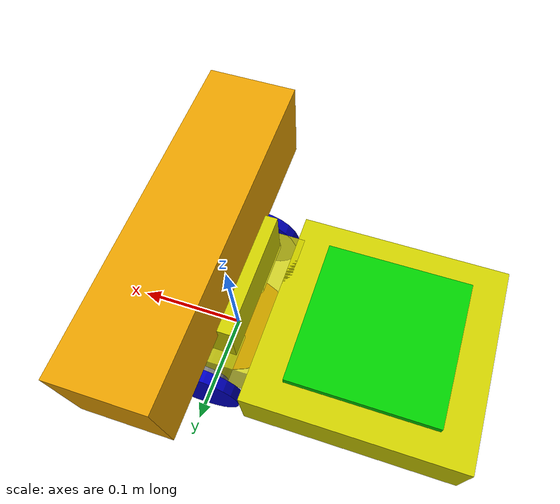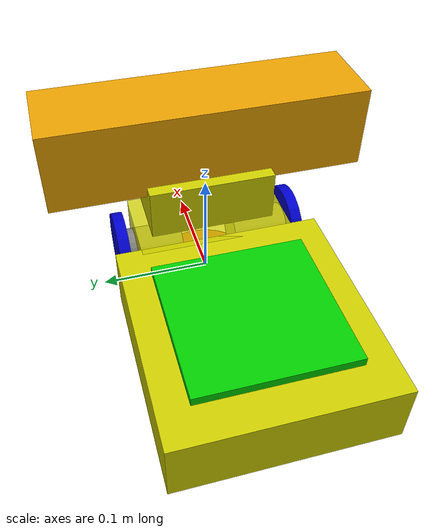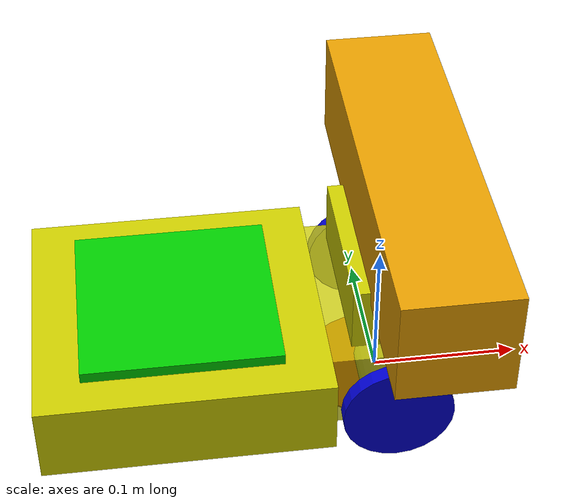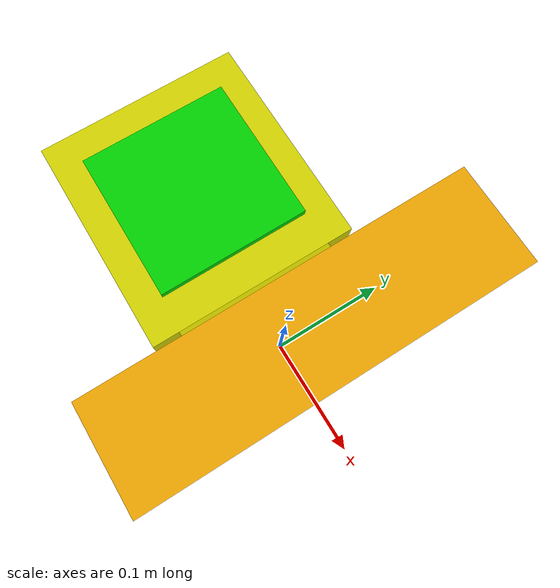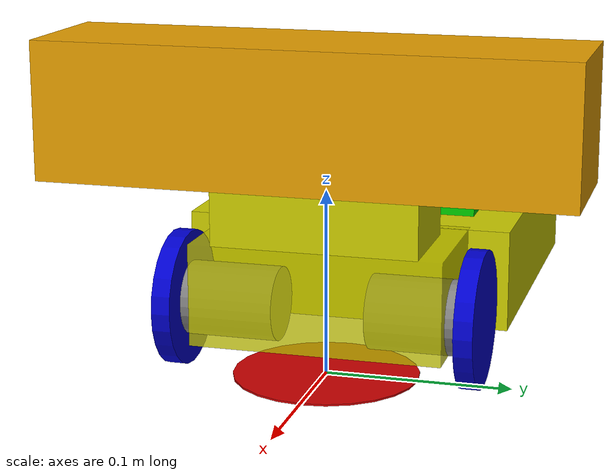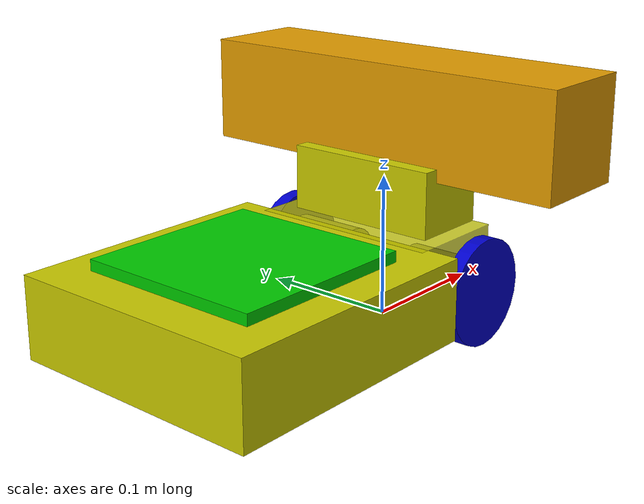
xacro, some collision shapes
<?xml version="1.0"?>
<robot name="dude_robot" xmlns:xacro="http://ros.org/wiki/xacro">

  <!-- Included URDF/XACRO Files -->
  <xacro:include filename="$(find ros_dude)/urdf/materials.urdf" />
  <xacro:include filename="$(find ros_dude)/urdf/wheel.urdf.xacro" />
  <xacro:include filename="$(find ros_dude)/urdf/motor.urdf.xacro" />
  <xacro:include filename="$(find ros_dude)/urdf/sensors/asus_xtion_pro.urdf.xacro"/>
  <!-- Included URDF/XACRO Files -->

  <!-- Global properties -->
  <property name="M_PI" value="3.14159"/>
  <!-- Global properties -->

  <!-- Sprockets params -->
  <property name="wheel_radius" value="0.0365"/>
  <property name="wheel_leght" value="0.01"/>
  <property name="wheel_offset_x" value="-0.00"/>
  <property name="wheel_offset_y" value="0.08"/>
  <property name="wheel_offset_z" value="${wheel_radius}"/>
  <!-- Sprockets params -->

  <!-- Asus Xtion params -->
  <property name="cam_px" value="0.02" />
  <property name="cam_py" value="0.022" />
  <property name="cam_pz" value="0.145" />
  <property name="cam_or" value="0" />
  <property name="cam_op" value="0" />
  <property name="cam_oy" value="0" />
  <!-- Asus Xtion params -->

  <!-- base_link -->
  <link name="base_link">
    <visual>
      <origin rpy="0 0 0" xyz="0 0 0"/>
      <geometry>
        <cylinder length=".001" radius="0.05"/>
      </geometry>
      <material name="Red" />
    </visual>
  </link>
  <!-- base_link -->

  <!-- Body chassis -->
  <link name="body_bottom_chassis_link">
    <visual>
      <geometry>
        <box size="0.19 0.18 .055"/>
      </geometry>
      <material name="Yellow" />
    </visual>
  </link>
  <joint name="Body_bottom" type="fixed">
    <axis xyz="0 0 1"/>
    <parent link="base_link"/>
    <child link="body_bottom_chassis_link"/>
    <origin rpy="0 0 0" xyz="-${wheel_radius+0.09+0.01} 0 ${wheel_radius*2-0.0275}"/>
    <joint_properties damping="0.0" friction="0.0"/>
  </joint>

  <link name="body_bottom_chassis_alpha_link">
    <visual>
      <geometry>
        <box size="0.075 0.135 .055"/>
      </geometry>
      <material name="Yellow-Aplha" />
    </visual>
  </link>
  <joint name="Body_bottom_alpha" type="fixed">
    <axis xyz="0 0 1"/>
    <parent link="base_link"/>
    <child link="body_bottom_chassis_alpha_link"/>
    <origin rpy="0 0 0" xyz="-0.01 0 ${wheel_radius*2-0.0275}"/>
    <joint_properties damping="0.0" friction="0.0"/>
  </joint>

  <link name="body_top_chassis_link">
    <visual>
      <geometry>
        <box size="0.055 0.11 .045"/>
      </geometry>
      <material name="Yellow" />
    </visual>
  </link>
  <joint name="Body_top" type="fixed">
    <axis xyz="0 0 1"/>
    <parent link="base_link"/>
    <child link="body_top_chassis_link"/>
    <origin rpy="0 0 0" xyz="0 0 ${wheel_radius*2+0.0225}"/>
    <joint_properties damping="0.0" friction="0.0"/>
  </joint>

  <link name="asus_support_link">
    <visual>
      <geometry>
        <box size="0.015 0.015 .015"/>
      </geometry>
      <material name="Black" />
    </visual>
  </link>
  <joint name="Asus_support" type="fixed">
    <axis xyz="0 0 1"/>
    <parent link="body_top_chassis_link"/>
    <child link="asus_support_link"/>
    <origin rpy="0 0 0" xyz="${cam_px-0.01725} 0 0.030"/>
    <joint_properties damping="0.0" friction="0.0"/>
  </joint>
  <!-- Body chassis -->

  <!-- Jetson -->
  <link name="jetson_link">
    <visual>
      <geometry>
        <box size="0.13 0.13 .01"/>
      </geometry>
      <material name="Green" />
    </visual>
  </link>
  <joint name="Jetson" type="fixed">
    <axis xyz="0 0 1"/>
    <parent link="body_bottom_chassis_link"/>
    <child link="jetson_link"/>
    <origin rpy="0 0 0" xyz="0 0 0.03"/>
    <joint_properties damping="0.0" friction="0.0"/>
  </joint>
  <!-- Jetson -->

  <!-- Asus Xtion Pro Live -->
  <xacro:sensor_asus_xtion_pro parent="base_link"/>
  <!-- Asus Xtion Pro Live -->

  <!-- Motors and wheels -->
  <xacro:dude_wheel position="Left">
    <origin xyz="${wheel_offset_x} ${wheel_offset_y} ${wheel_offset_z}" rpy="${-M_PI/2} 0 0" />
  </xacro:dude_wheel>
  <xacro:dude_wheel position="Right">
    <origin xyz="${wheel_offset_x} ${-wheel_offset_y} ${wheel_offset_z}" rpy="${-M_PI/2} 0 0" />
  </xacro:dude_wheel>
  <xacro:dude_motor position="Left">
    <origin xyz="${wheel_offset_x} ${wheel_offset_y-3*wheel_leght} ${wheel_offset_z}" rpy="${-M_PI/2} 0 0" />
  </xacro:dude_motor>
  <xacro:dude_motor position="Right">
    <origin xyz="${wheel_offset_x} ${-(wheel_offset_y-3*wheel_leght)} ${wheel_offset_z}" rpy="${-M_PI/2} 0 0" />
  </xacro:dude_motor>
  <!-- Motors and wheels -->

</robot>

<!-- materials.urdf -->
<robot name="dude_materials">

  <material name="Black">
    <color rgba="0.1 0.1 0.1 1.0"/>
  </material>

  <material name="Blue">
    <color rgba="0.0 0.0 0.8 1.0"/>
  </material>

  <material name="Green">
    <color rgba="0.0 0.8 0.0 1.0"/>
  </material>

  <material name="Grey">
    <color rgba="0.5 0.5 0.5 1.0"/>
  </material>

  <material name="DarkGrey">
    <color rgba="0.3 0.3 0.3 1.0"/>
  </material>

  <material name="Red">
    <color rgba="0.8 0.0 0.0 1.0"/>
  </material>

  <material name="White">
    <color rgba="1.0 1.0 1.0 1.0"/>
  </material>

  <material name="Yellow">
    <color rgba="0.8 0.8 0.0 1.0"/>
  </material>

  <material name="Yellow-Aplha">
    <color rgba="0.8 0.8 0.0 0.8"/>
  </material>
</robot>

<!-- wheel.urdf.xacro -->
<robot xmlns:xacro="http://ros.org/wiki/xacro" name="dude_wheel">

  <xacro:macro name="dude_wheel" params="position *joint_pose">

    <link name="${position}_wheel">
      <visual>
        <geometry>
          <cylinder length="${wheel_leght}" radius="${wheel_radius}"/>
        </geometry>
        <material name="Blue" />
      </visual>
    </link>

    <joint name="${position}" type="continuous">
      <parent link="base_link"/>
      <child link="${position}_wheel"/>
      <limit effort="100" velocity="100"/>
      <joint_properties damping="0.0" friction="0.0"/>
      <xacro:insert_block name="joint_pose"/>
      <axis xyz="0 0 1"/>
    </joint>

  </xacro:macro>

</robot>

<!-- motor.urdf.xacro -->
<robot xmlns:xacro="http://ros.org/wiki/xacro" name="dude_motor">

  <xacro:macro name="dude_motor" params="position *joint_pose">

    <link name="${position}_motor_link">
      <visual>
        <geometry>
          <cylinder length="0.05" radius="0.02"/>
        </geometry>
        <material name="Grey" />
      </visual>
    </link>

    <joint name="${position}_motor" type="fixed">
      <parent link="base_link"/>
      <child link="${position}_motor_link"/>
      <limit effort="100" velocity="100"/>
      <joint_properties damping="0.0" friction="0.0"/>
      <xacro:insert_block name="joint_pose"/>
      <axis xyz="0 0 1"/>
    </joint>

  </xacro:macro>

</robot>

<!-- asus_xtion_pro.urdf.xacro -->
<robot name="sensor_asus_xtion_pro" xmlns:xacro="http://ros.org/wiki/xacro">

  <!-- Xacro properties -->
  <xacro:property name="M_SCALE" value="0.001"/>
  <xacro:property name="asus_xtion_pro_depth_rel_rgb_py" value="0.0270" />
  <xacro:property name="asus_xtion_pro_cam_rel_rgb_py"   value="-0.0220" />

  <!-- Parameterised in part by the values in turtlebot_properties.urdf.xacro -->
  <xacro:macro name="sensor_asus_xtion_pro" params="parent">
    <joint name="camera_rgb_joint" type="fixed">
      <origin xyz="${cam_px} ${cam_py} ${cam_pz}"
              rpy="${cam_or} ${cam_op} ${cam_oy}"/>
      <parent link="${parent}"/>
      <child link="camera_rgb_frame" />
    </joint>
    <link name="camera_rgb_frame"/>

    <joint name="camera_rgb_optical_joint" type="fixed">
      <origin xyz="0 0 0" rpy="${-M_PI/2} 0 ${-M_PI/2}" />
      <parent link="camera_rgb_frame" />
      <child link="camera_rgb_optical_frame" />
    </joint>
    <link name="camera_rgb_optical_frame"/>

    <joint name="camera_joint" type="fixed">
      <origin xyz="0 ${asus_xtion_pro_cam_rel_rgb_py} 0"
              rpy="0 0 0"/>
      <parent link="camera_rgb_frame"/>
      <child link="camera_link"/>
    </joint>
    <link name="camera_link">
      <visual>
        <origin xyz="-0.01 0 0" rpy="${-M_PI/2} -${M_PI} ${-M_PI/2}"/>
        <geometry>
          <mesh filename="package://myzharbot_robot_ros/meshes/sensors/asus_xtion_pro_live.dae" scale="${M_SCALE} ${M_SCALE} ${M_SCALE}"/>
        </geometry>
      </visual>
      <collision>
        <origin xyz="0.0 0.0 0.0" rpy="0 0 0" />
        <geometry>
        <box size="0.0730 0.2760 0.0720"/>
      </geometry>
      </collision>
      <inertial>
        <mass value="0.170" />
        <origin xyz="0 0 0" />
        <inertia ixx="0.001152600" ixy="0.0" ixz="0.0"
                 iyy="0.000148934" iyz="0.0"
                 izz="0.001154654" />
      </inertial>
    </link>

    <joint name="camera_depth_joint" type="fixed">
      <origin xyz="0 ${asus_xtion_pro_depth_rel_rgb_py} 0" rpy="0 0 0" />
      <parent link="camera_rgb_frame" />
      <child link="camera_depth_frame" />
    </joint>
    <link name="camera_depth_frame"/>

    <joint name="camera_depth_optical_joint" type="fixed">
      <origin xyz="0 0 0" rpy="${-M_PI/2} 0 ${-M_PI/2}" />
      <parent link="camera_depth_frame" />
      <child link="camera_depth_optical_frame" />
    </joint>
    <link name="camera_depth_optical_frame"/>

  </xacro:macro>
</robot>
